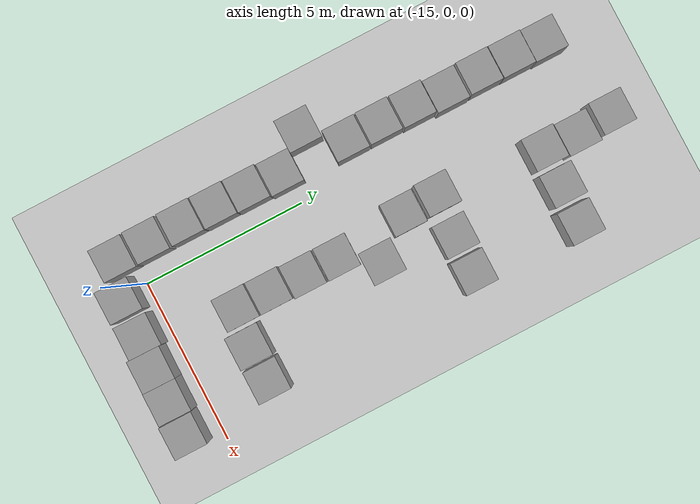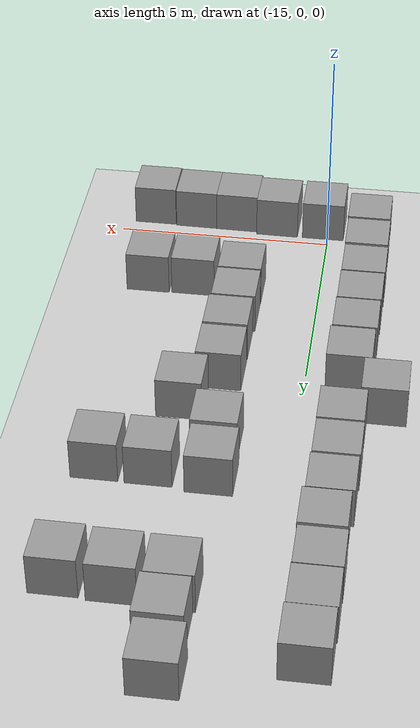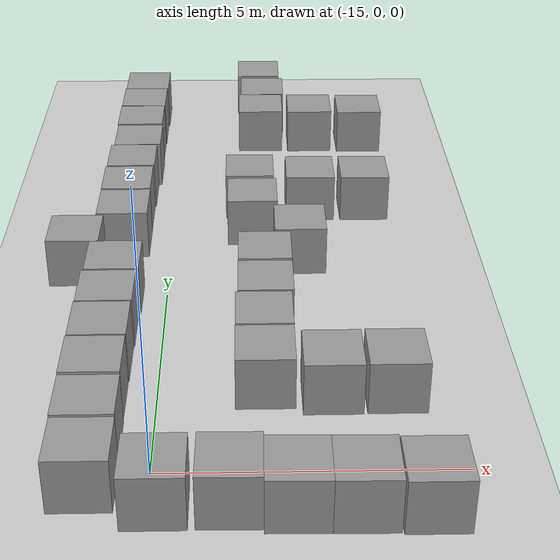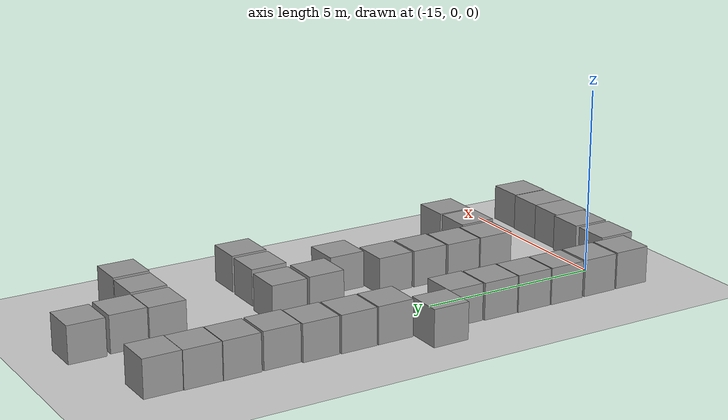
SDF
<sdf version="1.7">
 <world name="default">
  <model name="ground_plane">
   <static>1</static>
   <link name="link">
    <collision name="collision">
     <geometry><plane><normal>0 0 1</normal><size>100 100</size></plane></geometry>
     <surface><friction><ode><mu>100</mu><mu2>50</mu2></ode></friction></surface>
    </collision>
    <visual name="visual">
     <cast_shadows>0</cast_shadows>
     <geometry><plane><normal>0 0 1</normal><size>100 100</size></plane></geometry>
     <material>
      <script><uri>file://media/materials/scripts/gazebo.material</uri><name>Gazebo/Grey</name></script>
     </material>
    </visual>
   </link>
  </model>
  <model name="unit_box_79">
   <pose>-10.8496 11.6353 0.499995 0 1e-05 0</pose>
   <link name="link">
    <inertial>
     <mass>1</mass>
     <inertia>
      <ixx>0.166667</ixx>
      <ixy>0</ixy>
      <ixz>0</ixz>
      <iyy>0.166667</iyy>
      <iyz>0</iyz>
      <izz>0.166667</izz>
     </inertia>
    </inertial>
    <collision name="collision"><geometry><box><size>1 1 1</size></box></geometry></collision>
    <visual name="visual">
     <geometry><box><size>1 1 1</size></box></geometry>
     <material>
      <script><name>Gazebo/Grey</name><uri>file://media/materials/scripts/gazebo.material</uri></script>
     </material>
    </visual>
   </link>
  </model>
  <model name="unit_box_85">
   <pose>-11.9972 11.6792 0.499995 -1e-05 0 0</pose>
   <link name="link">
    <inertial>
     <mass>1</mass>
     <inertia>
      <ixx>0.166667</ixx>
      <ixy>0</ixy>
      <ixz>0</ixz>
      <iyy>0.166667</iyy>
      <iyz>0</iyz>
      <izz>0.166667</izz>
     </inertia>
    </inertial>
    <collision name="collision"><geometry><box><size>1 1 1</size></box></geometry></collision>
    <visual name="visual">
     <geometry><box><size>1 1 1</size></box></geometry>
     <material>
      <script><name>Gazebo/Grey</name><uri>file://media/materials/scripts/gazebo.material</uri></script>
     </material>
    </visual>
   </link>
  </model>
  <model name="unit_box_86">
   <pose>-13.1299 11.7058 0.499995 0 1e-05 0</pose>
   <link name="link">
    <inertial>
     <mass>1</mass>
     <inertia>
      <ixx>0.166667</ixx>
      <ixy>0</ixy>
      <ixz>0</ixz>
      <iyy>0.166667</iyy>
      <iyz>0</iyz>
      <izz>0.166667</izz>
     </inertia>
    </inertial>
    <collision name="collision"><geometry><box><size>1 1 1</size></box></geometry></collision>
    <visual name="visual">
     <geometry><box><size>1 1 1</size></box></geometry>
     <material>
      <script><name>Gazebo/Grey</name><uri>file://media/materials/scripts/gazebo.material</uri></script>
     </material>
    </visual>
   </link>
  </model>
  <model name="unit_box_88">
   <pose>-11.0062 8.36397 0.499995 -1e-05 -0 0</pose>
   <link name="link">
    <inertial>
     <mass>1</mass>
     <inertia>
      <ixx>0.166667</ixx>
      <ixy>0</ixy>
      <ixz>0</ixz>
      <iyy>0.166667</iyy>
      <iyz>0</iyz>
      <izz>0.166667</izz>
     </inertia>
    </inertial>
    <collision name="collision"><geometry><box><size>1 1 1</size></box></geometry></collision>
    <visual name="visual">
     <geometry><box><size>1 1 1</size></box></geometry>
     <material>
      <script><name>Gazebo/Grey</name><uri>file://media/materials/scripts/gazebo.material</uri></script>
     </material>
    </visual>
   </link>
  </model>
  <model name="unit_box_89">
   <pose>-12.1401 8.38199 0.499995 0 1e-05 0</pose>
   <link name="link">
    <inertial>
     <mass>1</mass>
     <inertia>
      <ixx>0.166667</ixx>
      <ixy>0</ixy>
      <ixz>0</ixz>
      <iyy>0.166667</iyy>
      <iyz>0</iyz>
      <izz>0.166667</izz>
     </inertia>
    </inertial>
    <collision name="collision"><geometry><box><size>1 1 1</size></box></geometry></collision>
    <visual name="visual">
     <geometry><box><size>1 1 1</size></box></geometry>
     <material>
      <script><name>Gazebo/Grey</name><uri>file://media/materials/scripts/gazebo.material</uri></script>
     </material>
    </visual>
   </link>
  </model>
  <model name="unit_box_90">
   <pose>-13.4024 8.4816 0.499995 0 1e-05 0</pose>
   <link name="link">
    <inertial>
     <mass>1</mass>
     <inertia>
      <ixx>0.166667</ixx>
      <ixy>0</ixy>
      <ixz>0</ixz>
      <iyy>0.166667</iyy>
      <iyz>0</iyz>
      <izz>0.166667</izz>
     </inertia>
    </inertial>
    <collision name="collision"><geometry><box><size>1 1 1</size></box></geometry></collision>
    <visual name="visual">
     <geometry><box><size>1 1 1</size></box></geometry>
     <material>
      <script><name>Gazebo/Grey</name><uri>file://media/materials/scripts/gazebo.material</uri></script>
     </material>
    </visual>
   </link>
  </model>
  <model name="unit_box_91">
   <pose>-13.0801 12.7181 0.499995 -1e-05 0 0</pose>
   <link name="link">
    <inertial>
     <mass>1</mass>
     <inertia>
      <ixx>0.166667</ixx>
      <ixy>0</ixy>
      <ixz>0</ixz>
      <iyy>0.166667</iyy>
      <iyz>0</iyz>
      <izz>0.166667</izz>
     </inertia>
    </inertial>
    <collision name="collision"><geometry><box><size>1 1 1</size></box></geometry></collision>
    <visual name="visual">
     <geometry><box><size>1 1 1</size></box></geometry>
     <material>
      <script><name>Gazebo/Grey</name><uri>file://media/materials/scripts/gazebo.material</uri></script>
     </material>
    </visual>
   </link>
  </model>
  <model name="unit_box_92">
   <pose>-13.1566 13.8382 0.499995 0 1e-05 0</pose>
   <link name="link">
    <inertial>
     <mass>1</mass>
     <inertia>
      <ixx>0.166667</ixx>
      <ixy>0</ixy>
      <ixz>0</ixz>
      <iyy>0.166667</iyy>
      <iyz>0</iyz>
      <izz>0.166667</izz>
     </inertia>
    </inertial>
    <collision name="collision"><geometry><box><size>1 1 1</size></box></geometry></collision>
    <visual name="visual">
     <geometry><box><size>1 1 1</size></box></geometry>
     <material>
      <script><name>Gazebo/Grey</name><uri>file://media/materials/scripts/gazebo.material</uri></script>
     </material>
    </visual>
   </link>
  </model>
  <model name="unit_box_93">
   <pose>-15.872 11.0985 0.5 -0 -0 -0</pose>
   <link name="link">
    <inertial>
     <mass>1</mass>
     <inertia>
      <ixx>0.166667</ixx>
      <ixy>0</ixy>
      <ixz>0</ixz>
      <iyy>0.166667</iyy>
      <iyz>0</iyz>
      <izz>0.166667</izz>
     </inertia>
    </inertial>
    <collision name="collision"><geometry><box><size>1 1 1</size></box></geometry></collision>
    <visual name="visual">
     <geometry><box><size>1 1 1</size></box></geometry>
     <material>
      <script><name>Gazebo/Grey</name><uri>file://media/materials/scripts/gazebo.material</uri></script>
     </material>
    </visual>
   </link>
  </model>
  <model name="unit_box_94">
   <pose>-15.9201 9.01925 0.499995 -1e-05 -0 0</pose>
   <link name="link">
    <inertial>
     <mass>1</mass>
     <inertia>
      <ixx>0.166667</ixx>
      <ixy>0</ixy>
      <ixz>0</ixz>
      <iyy>0.166667</iyy>
      <iyz>0</iyz>
      <izz>0.166667</izz>
     </inertia>
    </inertial>
    <collision name="collision"><geometry><box><size>1 1 1</size></box></geometry></collision>
    <visual name="visual">
     <geometry><box><size>1 1 1</size></box></geometry>
     <material>
      <script><name>Gazebo/Grey</name><uri>file://media/materials/scripts/gazebo.material</uri></script>
     </material>
    </visual>
   </link>
  </model>
  <model name="unit_box_95">
   <pose>-15.8541 10.0347 0.499995 0 1e-05 0</pose>
   <link name="link">
    <inertial>
     <mass>1</mass>
     <inertia>
      <ixx>0.166667</ixx>
      <ixy>0</ixy>
      <ixz>0</ixz>
      <iyy>0.166667</iyy>
      <iyz>0</iyz>
      <izz>0.166667</izz>
     </inertia>
    </inertial>
    <collision name="collision"><geometry><box><size>1 1 1</size></box></geometry></collision>
    <visual name="visual">
     <geometry><box><size>1 1 1</size></box></geometry>
     <material>
      <script><name>Gazebo/Grey</name><uri>file://media/materials/scripts/gazebo.material</uri></script>
     </material>
    </visual>
   </link>
  </model>
  <model name="unit_box_96">
   <pose>-15.8622 12.115 0.499995 0 1e-05 0</pose>
   <link name="link">
    <inertial>
     <mass>1</mass>
     <inertia>
      <ixx>0.166667</ixx>
      <ixy>0</ixy>
      <ixz>0</ixz>
      <iyy>0.166667</iyy>
      <iyz>0</iyz>
      <izz>0.166667</izz>
     </inertia>
    </inertial>
    <collision name="collision"><geometry><box><size>1 1 1</size></box></geometry></collision>
    <visual name="visual">
     <geometry><box><size>1 1 1</size></box></geometry>
     <material>
      <script><name>Gazebo/Grey</name><uri>file://media/materials/scripts/gazebo.material</uri></script>
     </material>
    </visual>
   </link>
  </model>
  <model name="unit_box_97">
   <pose>-15.839 13.1183 0.499995 -1e-05 0 0</pose>
   <link name="link">
    <inertial>
     <mass>1</mass>
     <inertia>
      <ixx>0.166667</ixx>
      <ixy>0</ixy>
      <ixz>0</ixz>
      <iyy>0.166667</iyy>
      <iyz>0</iyz>
      <izz>0.166667</izz>
     </inertia>
    </inertial>
    <collision name="collision"><geometry><box><size>1 1 1</size></box></geometry></collision>
    <visual name="visual">
     <geometry><box><size>1 1 1</size></box></geometry>
     <material>
      <script><name>Gazebo/Grey</name><uri>file://media/materials/scripts/gazebo.material</uri></script>
     </material>
    </visual>
   </link>
  </model>
  <model name="unit_box_98">
   <pose>-15.9405 7.97497 0.499995 0 1e-05 0</pose>
   <link name="link">
    <inertial>
     <mass>1</mass>
     <inertia>
      <ixx>0.166667</ixx>
      <ixy>0</ixy>
      <ixz>0</ixz>
      <iyy>0.166667</iyy>
      <iyz>0</iyz>
      <izz>0.166667</izz>
     </inertia>
    </inertial>
    <collision name="collision"><geometry><box><size>1 1 1</size></box></geometry></collision>
    <visual name="visual">
     <geometry><box><size>1 1 1</size></box></geometry>
     <material>
      <script><name>Gazebo/Grey</name><uri>file://media/materials/scripts/gazebo.material</uri></script>
     </material>
    </visual>
   </link>
  </model>
  <model name="unit_box_99">
   <pose>-15.9352 6.93311 0.499995 -1e-05 0 0</pose>
   <link name="link">
    <inertial>
     <mass>1</mass>
     <inertia>
      <ixx>0.166667</ixx>
      <ixy>0</ixy>
      <ixz>0</ixz>
      <iyy>0.166667</iyy>
      <iyz>0</iyz>
      <izz>0.166667</izz>
     </inertia>
    </inertial>
    <collision name="collision"><geometry><box><size>1 1 1</size></box></geometry></collision>
    <visual name="visual">
     <geometry><box><size>1 1 1</size></box></geometry>
     <material>
      <script><name>Gazebo/Grey</name><uri>file://media/materials/scripts/gazebo.material</uri></script>
     </material>
    </visual>
   </link>
  </model>
  <model name="unit_box_100">
   <pose>-16.7856 5.87885 0.499995 1e-05 -0 0</pose>
   <link name="link">
    <inertial>
     <mass>1</mass>
     <inertia>
      <ixx>0.166667</ixx>
      <ixy>0</ixy>
      <ixz>0</ixz>
      <iyy>0.166667</iyy>
      <iyz>0</iyz>
      <izz>0.166667</izz>
     </inertia>
    </inertial>
    <collision name="collision"><geometry><box><size>1 1 1</size></box></geometry></collision>
    <visual name="visual">
     <geometry><box><size>1 1 1</size></box></geometry>
     <material>
      <script><name>Gazebo/Grey</name><uri>file://media/materials/scripts/gazebo.material</uri></script>
     </material>
    </visual>
   </link>
  </model>
  <model name="unit_box_101">
   <pose>-15.9509 4.8761 0.499995 0 1e-05 0</pose>
   <link name="link">
    <inertial>
     <mass>1</mass>
     <inertia>
      <ixx>0.166667</ixx>
      <ixy>0</ixy>
      <ixz>0</ixz>
      <iyy>0.166667</iyy>
      <iyz>0</iyz>
      <izz>0.166667</izz>
     </inertia>
    </inertial>
    <collision name="collision"><geometry><box><size>1 1 1</size></box></geometry></collision>
    <visual name="visual">
     <geometry><box><size>1 1 1</size></box></geometry>
     <material>
      <script><name>Gazebo/Grey</name><uri>file://media/materials/scripts/gazebo.material</uri></script>
     </material>
    </visual>
   </link>
  </model>
  <model name="unit_box_102">
   <pose>-13.3553 7.38097 0.499995 0 1e-05 0</pose>
   <link name="link">
    <inertial>
     <mass>1</mass>
     <inertia>
      <ixx>0.166667</ixx>
      <ixy>0</ixy>
      <ixz>0</ixz>
      <iyy>0.166667</iyy>
      <iyz>0</iyz>
      <izz>0.166667</izz>
     </inertia>
    </inertial>
    <collision name="collision"><geometry><box><size>1 1 1</size></box></geometry></collision>
    <visual name="visual">
     <geometry><box><size>1 1 1</size></box></geometry>
     <material>
      <script><name>Gazebo/Grey</name><uri>file://media/materials/scripts/gazebo.material</uri></script>
     </material>
    </visual>
   </link>
  </model>
  <model name="unit_box_103">
   <pose>-12.4339 6.24083 0.499995 -1e-05 0 0</pose>
   <link name="link">
    <inertial>
     <mass>1</mass>
     <inertia>
      <ixx>0.166667</ixx>
      <ixy>0</ixy>
      <ixz>0</ixz>
      <iyy>0.166667</iyy>
      <iyz>0</iyz>
      <izz>0.166667</izz>
     </inertia>
    </inertial>
    <collision name="collision"><geometry><box><size>1 1 1</size></box></geometry></collision>
    <visual name="visual">
     <geometry><box><size>1 1 1</size></box></geometry>
     <material>
      <script><name>Gazebo/Grey</name><uri>file://media/materials/scripts/gazebo.material</uri></script>
     </material>
    </visual>
   </link>
  </model>
  <model name="unit_box_104">
   <pose>-13.1391 5.18055 0.499995 1e-05 -0 0</pose>
   <link name="link">
    <inertial>
     <mass>1</mass>
     <inertia>
      <ixx>0.166667</ixx>
      <ixy>0</ixy>
      <ixz>0</ixz>
      <iyy>0.166667</iyy>
      <iyz>0</iyz>
      <izz>0.166667</izz>
     </inertia>
    </inertial>
    <collision name="collision"><geometry><box><size>1 1 1</size></box></geometry></collision>
    <visual name="visual">
     <geometry><box><size>1 1 1</size></box></geometry>
     <material>
      <script><name>Gazebo/Grey</name><uri>file://media/materials/scripts/gazebo.material</uri></script>
     </material>
    </visual>
   </link>
  </model>
  <model name="unit_box_105">
   <pose>-13.1438 4.119 0.499995 -1e-05 0 0</pose>
   <link name="link">
    <inertial>
     <mass>1</mass>
     <inertia>
      <ixx>0.166667</ixx>
      <ixy>0</ixy>
      <ixz>0</ixz>
      <iyy>0.166667</iyy>
      <iyz>0</iyz>
      <izz>0.166667</izz>
     </inertia>
    </inertial>
    <collision name="collision"><geometry><box><size>1 1 1</size></box></geometry></collision>
    <visual name="visual">
     <geometry><box><size>1 1 1</size></box></geometry>
     <material>
      <script><name>Gazebo/Grey</name><uri>file://media/materials/scripts/gazebo.material</uri></script>
     </material>
    </visual>
   </link>
  </model>
  <model name="unit_box_106">
   <pose>-13.1862 3.07745 0.499995 0 1e-05 0</pose>
   <link name="link">
    <inertial>
     <mass>1</mass>
     <inertia>
      <ixx>0.166667</ixx>
      <ixy>0</ixy>
      <ixz>0</ixz>
      <iyy>0.166667</iyy>
      <iyz>0</iyz>
      <izz>0.166667</izz>
     </inertia>
    </inertial>
    <collision name="collision"><geometry><box><size>1 1 1</size></box></geometry></collision>
    <visual name="visual">
     <geometry><box><size>1 1 1</size></box></geometry>
     <material>
      <script><name>Gazebo/Grey</name><uri>file://media/materials/scripts/gazebo.material</uri></script>
     </material>
    </visual>
   </link>
  </model>
  <model name="unit_box_107">
   <pose>-13.1906 2.04081 0.499995 -1e-05 0 0</pose>
   <link name="link">
    <inertial>
     <mass>1</mass>
     <inertia>
      <ixx>0.166667</ixx>
      <ixy>0</ixy>
      <ixz>0</ixz>
      <iyy>0.166667</iyy>
      <iyz>0</iyz>
      <izz>0.166667</izz>
     </inertia>
    </inertial>
    <collision name="collision"><geometry><box><size>1 1 1</size></box></geometry></collision>
    <visual name="visual">
     <geometry><box><size>1 1 1</size></box></geometry>
     <material>
      <script><name>Gazebo/Grey</name><uri>file://media/materials/scripts/gazebo.material</uri></script>
     </material>
    </visual>
   </link>
  </model>
  <model name="unit_box_108">
   <pose>-15.9896 3.83812 0.499995 0 1e-05 0</pose>
   <link name="link">
    <inertial>
     <mass>1</mass>
     <inertia>
      <ixx>0.166667</ixx>
      <ixy>0</ixy>
      <ixz>0</ixz>
      <iyy>0.166667</iyy>
      <iyz>0</iyz>
      <izz>0.166667</izz>
     </inertia>
    </inertial>
    <collision name="collision"><geometry><box><size>1 1 1</size></box></geometry></collision>
    <visual name="visual">
     <geometry><box><size>1 1 1</size></box></geometry>
     <material>
      <script><name>Gazebo/Grey</name><uri>file://media/materials/scripts/gazebo.material</uri></script>
     </material>
    </visual>
   </link>
  </model>
  <model name="unit_box_109">
   <pose>-16.0044 2.81289 0.499995 1e-05 -0 0</pose>
   <link name="link">
    <inertial>
     <mass>1</mass>
     <inertia>
      <ixx>0.166667</ixx>
      <ixy>0</ixy>
      <ixz>0</ixz>
      <iyy>0.166667</iyy>
      <iyz>0</iyz>
      <izz>0.166667</izz>
     </inertia>
    </inertial>
    <collision name="collision"><geometry><box><size>1 1 1</size></box></geometry></collision>
    <visual name="visual">
     <geometry><box><size>1 1 1</size></box></geometry>
     <material>
      <script><name>Gazebo/Grey</name><uri>file://media/materials/scripts/gazebo.material</uri></script>
     </material>
    </visual>
   </link>
  </model>
  <model name="unit_box_110">
   <pose>-16.0156 1.78233 0.499995 0 1e-05 0</pose>
   <link name="link">
    <inertial>
     <mass>1</mass>
     <inertia>
      <ixx>0.166667</ixx>
      <ixy>0</ixy>
      <ixz>0</ixz>
      <iyy>0.166667</iyy>
      <iyz>0</iyz>
      <izz>0.166667</izz>
     </inertia>
    </inertial>
    <collision name="collision"><geometry><box><size>1 1 1</size></box></geometry></collision>
    <visual name="visual">
     <geometry><box><size>1 1 1</size></box></geometry>
     <material>
      <script><name>Gazebo/Grey</name><uri>file://media/materials/scripts/gazebo.material</uri></script>
     </material>
    </visual>
   </link>
  </model>
  <model name="unit_box_111">
   <pose>-16.0063 0.710142 0.499995 -1e-05 0 0</pose>
   <link name="link">
    <inertial>
     <mass>1</mass>
     <inertia>
      <ixx>0.166667</ixx>
      <ixy>0</ixy>
      <ixz>0</ixz>
      <iyy>0.166667</iyy>
      <iyz>0</iyz>
      <izz>0.166667</izz>
     </inertia>
    </inertial>
    <collision name="collision"><geometry><box><size>1 1 1</size></box></geometry></collision>
    <visual name="visual">
     <geometry><box><size>1 1 1</size></box></geometry>
     <material>
      <script><name>Gazebo/Grey</name><uri>file://media/materials/scripts/gazebo.material</uri></script>
     </material>
    </visual>
   </link>
  </model>
  <model name="unit_box_112">
   <pose>-15.9928 -0.34604 0.499995 0 1e-05 0</pose>
   <link name="link">
    <inertial>
     <mass>1</mass>
     <inertia>
      <ixx>0.166667</ixx>
      <ixy>0</ixy>
      <ixz>0</ixz>
      <iyy>0.166667</iyy>
      <iyz>0</iyz>
      <izz>0.166667</izz>
     </inertia>
    </inertial>
    <collision name="collision"><geometry><box><size>1 1 1</size></box></geometry></collision>
    <visual name="visual">
     <geometry><box><size>1 1 1</size></box></geometry>
     <material>
      <script><name>Gazebo/Grey</name><uri>file://media/materials/scripts/gazebo.material</uri></script>
     </material>
    </visual>
   </link>
  </model>
  <model name="unit_box_113">
   <pose>-14.877 -0.728858 0.499995 -1e-05 0 0</pose>
   <link name="link">
    <inertial>
     <mass>1</mass>
     <inertia>
      <ixx>0.166667</ixx>
      <ixy>0</ixy>
      <ixz>0</ixz>
      <iyy>0.166667</iyy>
      <iyz>0</iyz>
      <izz>0.166667</izz>
     </inertia>
    </inertial>
    <collision name="collision"><geometry><box><size>1 1 1</size></box></geometry></collision>
    <visual name="visual">
     <geometry><box><size>1 1 1</size></box></geometry>
     <material>
      <script><name>Gazebo/Grey</name><uri>file://media/materials/scripts/gazebo.material</uri></script>
     </material>
    </visual>
   </link>
  </model>
  <model name="unit_box_114">
   <pose>-13.7609 -0.72631 0.499995 1e-05 0 -0.011216</pose>
   <link name="link">
    <inertial>
     <mass>1</mass>
     <inertia>
      <ixx>0.166667</ixx>
      <ixy>0</ixy>
      <ixz>0</ixz>
      <iyy>0.166667</iyy>
      <iyz>0</iyz>
      <izz>0.166667</izz>
     </inertia>
    </inertial>
    <collision name="collision"><geometry><box><size>1 1 1</size></box></geometry></collision>
    <visual name="visual">
     <geometry><box><size>1 1 1</size></box></geometry>
     <material>
      <script><name>Gazebo/Grey</name><uri>file://media/materials/scripts/gazebo.material</uri></script>
     </material>
    </visual>
   </link>
  </model>
  <model name="unit_box_115">
   <pose>-12.0773 1.87529 0.499995 -1e-05 0 0</pose>
   <link name="link">
    <inertial>
     <mass>1</mass>
     <inertia>
      <ixx>0.166667</ixx>
      <ixy>0</ixy>
      <ixz>0</ixz>
      <iyy>0.166667</iyy>
      <iyz>0</iyz>
      <izz>0.166667</izz>
     </inertia>
    </inertial>
    <collision name="collision"><geometry><box><size>1 1 1</size></box></geometry></collision>
    <visual name="visual">
     <geometry><box><size>1 1 1</size></box></geometry>
     <material>
      <script><name>Gazebo/Grey</name><uri>file://media/materials/scripts/gazebo.material</uri></script>
     </material>
    </visual>
   </link>
  </model>
  <model name="unit_box_116">
   <pose>-11.0152 1.88765 0.5 0 -0 0</pose>
   <link name="link">
    <inertial>
     <mass>1</mass>
     <inertia>
      <ixx>0.166667</ixx>
      <ixy>0</ixy>
      <ixz>0</ixz>
      <iyy>0.166667</iyy>
      <iyz>0</iyz>
      <izz>0.166667</izz>
     </inertia>
    </inertial>
    <collision name="collision"><geometry><box><size>1 1 1</size></box></geometry></collision>
    <visual name="visual">
     <geometry><box><size>1 1 1</size></box></geometry>
     <material>
      <script><name>Gazebo/Grey</name><uri>file://media/materials/scripts/gazebo.material</uri></script>
     </material>
    </visual>
   </link>
  </model>
  <model name="unit_box_137">
   <pose>-10.74 -0.869872 0.499995 1e-05 -0 0</pose>
   <link name="link">
    <inertial>
     <mass>1</mass>
     <inertia>
      <ixx>0.166667</ixx>
      <ixy>0</ixy>
      <ixz>0</ixz>
      <iyy>0.166667</iyy>
      <iyz>0</iyz>
      <izz>0.166667</izz>
     </inertia>
    </inertial>
    <collision name="collision"><geometry><box><size>1 1 1</size></box></geometry></collision>
    <visual name="visual">
     <geometry><box><size>1 1 1</size></box></geometry>
     <material>
      <script><name>Gazebo/Grey</name><uri>file://media/materials/scripts/gazebo.material</uri></script>
     </material>
    </visual>
   </link>
  </model>
  <model name="unit_box_138">
   <pose>-11.7618 -0.833957 0.499995 0 1e-05 -0.011209</pose>
   <link name="link">
    <inertial>
     <mass>1</mass>
     <inertia>
      <ixx>0.166667</ixx>
      <ixy>0</ixy>
      <ixz>0</ixz>
      <iyy>0.166667</iyy>
      <iyz>0</iyz>
      <izz>0.166667</izz>
     </inertia>
    </inertial>
    <collision name="collision"><geometry><box><size>1 1 1</size></box></geometry></collision>
    <visual name="visual">
     <geometry><box><size>1 1 1</size></box></geometry>
     <material>
      <script><name>Gazebo/Grey</name><uri>file://media/materials/scripts/gazebo.material</uri></script>
     </material>
    </visual>
   </link>
  </model>
  <model name="unit_box_139">
   <pose>-12.7618 -0.818376 0.499995 1e-05 -0 -0.011211</pose>
   <link name="link">
    <inertial>
     <mass>1</mass>
     <inertia>
      <ixx>0.166667</ixx>
      <ixy>0</ixy>
      <ixz>0</ixz>
      <iyy>0.166667</iyy>
      <iyz>0</iyz>
      <izz>0.166667</izz>
     </inertia>
    </inertial>
    <collision name="collision"><geometry><box><size>1 1 1</size></box></geometry></collision>
    <visual name="visual">
     <geometry><box><size>1 1 1</size></box></geometry>
     <material>
      <script><name>Gazebo/Grey</name><uri>file://media/materials/scripts/gazebo.material</uri></script>
     </material>
    </visual>
   </link>
  </model>
 </world>
</sdf>
